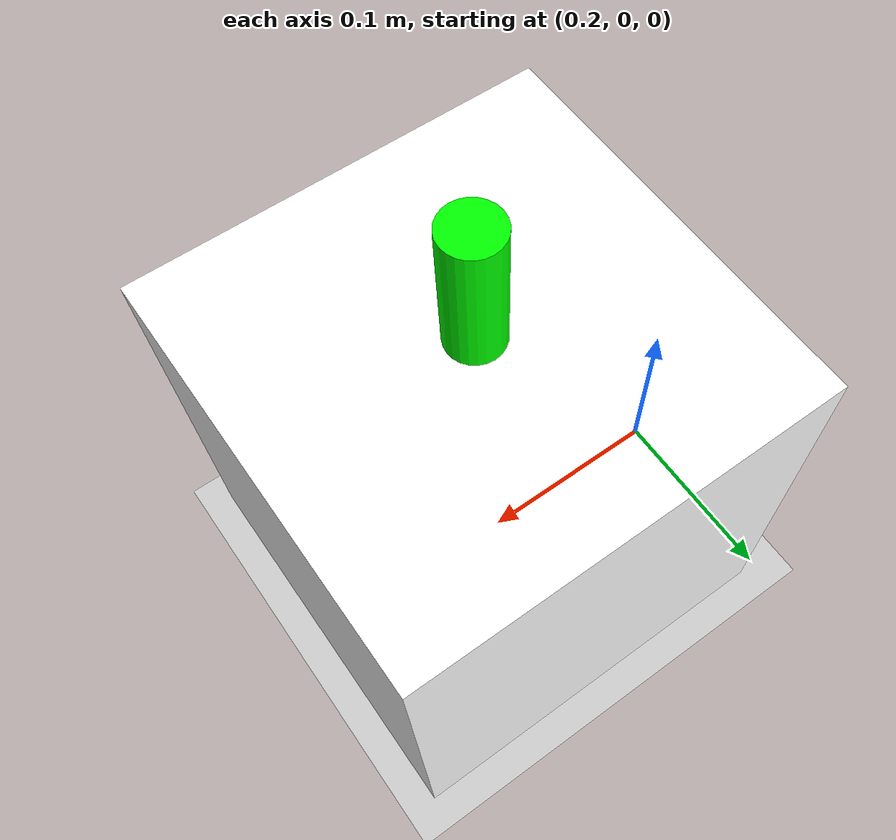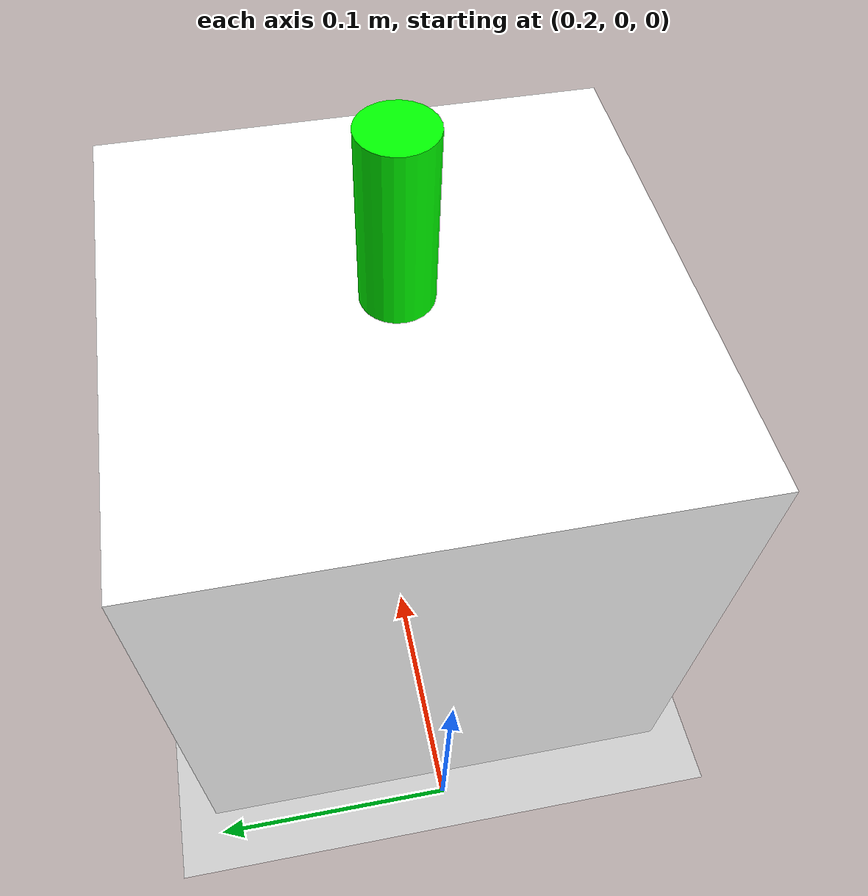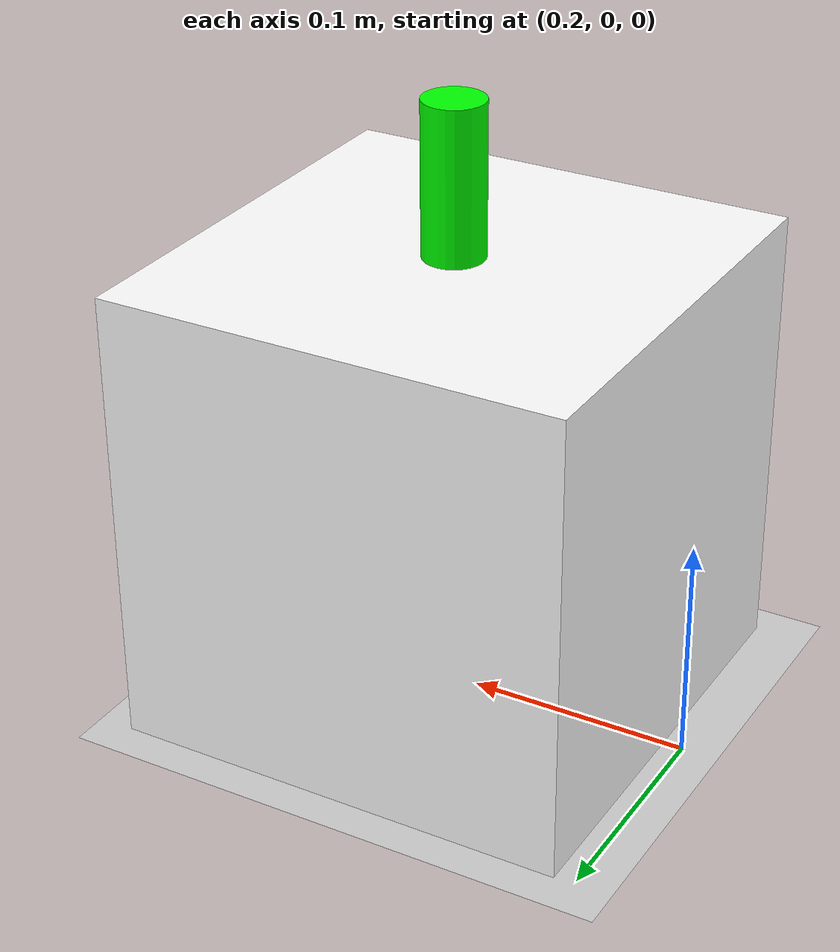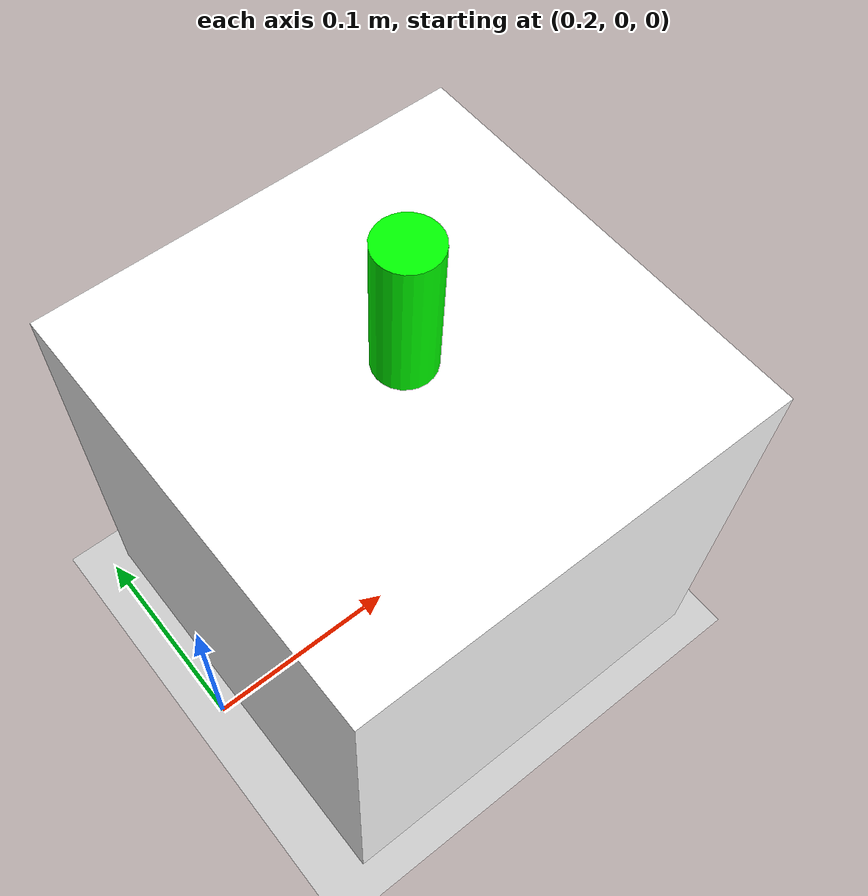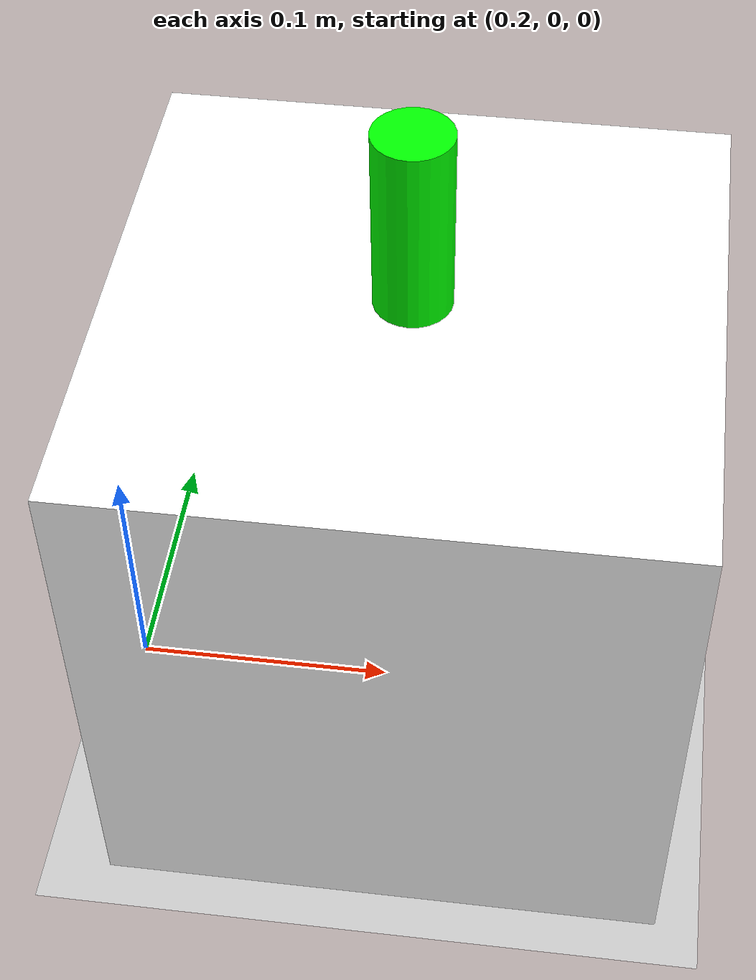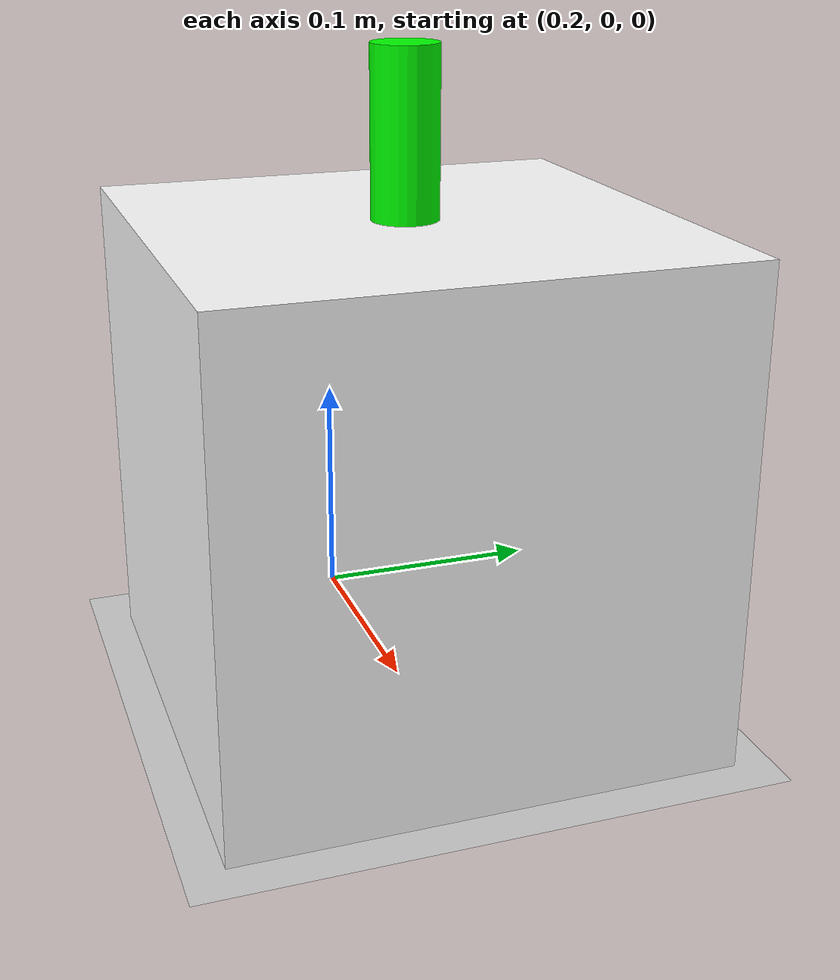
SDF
<?xml version="1.0"?>
<sdf version="1.8">
  <world name="leo_empty">
    <physics name="1ms" type="ignored">
      <max_step_size>0.001</max_step_size>
      <real_time_factor>1.0</real_time_factor>
    </physics>

    <plugin
      filename="gz-sim-physics-system"
      name="gz::sim::systems::Physics">
    </plugin>
    <plugin
      filename="gz-sim-sensors-system"
      name="gz::sim::systems::Sensors">
    </plugin>
    <plugin
      filename="gz-sim-scene-broadcaster-system"
      name="gz::sim::systems::SceneBroadcaster">
    </plugin>
    <plugin
      filename="gz-sim-user-commands-system"
      name="gz::sim::systems::UserCommands">
    </plugin>
    <plugin filename="gz-sim-imu-system"
      name="gz::sim::systems::Imu">
    </plugin>

    <light name="sun" type="directional">
      <cast_shadows>true</cast_shadows>
      <pose>0 0 10 0 0 0</pose>
      <diffuse>0.8 0.8 0.8 1</diffuse>
      <specular>0.2 0.2 0.2 1</specular>
      <attenuation>
        <range>1000</range>
        <constant>0.9</constant>
        <linear>0.01</linear>
        <quadratic>0.001</quadratic>
      </attenuation>
      <direction>-0.5 0.1 -0.9</direction>
    </light>

    <model name="ground_plane">
      <static>true</static>
      <link name="link">
        <collision name="collision">
          <geometry>
            <plane>
              <normal>0 0 1</normal>
              <size>100 100</size>
            </plane>
          </geometry>
          <surface>
            <friction>
              <ode>
                <mu>50</mu>
              </ode>
              <bullet>
                <friction>1</friction>
                <friction2>1</friction2>
                <rolling_friction>0.1</rolling_friction>
              </bullet>
            </friction>
          </surface>
        </collision>
        <visual name="visual">
          <geometry>
            <plane>
              <normal>0 0 1</normal>
              <size>100 100</size>
            </plane>
          </geometry>
          <material>
            <ambient>0.8 0.8 0.8 1</ambient>
            <diffuse>0.8 0.8 0.8 1</diffuse>
            <specular>0.8 0.8 0.8 1</specular>
          </material>
        </visual>
      </link>
    </model>

    <!-- ================= WHITE CUBE ================= -->
    <model name="cube">
      <static>true</static>
      <pose>0.311419 0 0.1025 0 0 0</pose>
      <link name="link">

        <collision name="collision">
          <geometry>
            <box>
              <size>0.205 0.205 0.205</size>
            </box>
          </geometry>
        </collision>

        <visual name="visual">
          <geometry>
            <box>
              <size>0.205 0.205 0.205</size>
            </box>
          </geometry>
          <material>
            <ambient>1 1 1 1</ambient>
            <diffuse>1 1 1 1</diffuse>
          </material>
        </visual>

      </link>
    </model>

    <!-- ================= GREEN CYLINDER ================= -->
    <model name="cylinder">
      <static>false</static>
      <pose>0.311419 0 0.2385 0 0 0</pose>
      <link name="link">

        <collision name="collision">
          <geometry>
            <cylinder>
              <radius>0.0135</radius>
              <length>0.067</length>
            </cylinder>
          </geometry>
        </collision>

        <visual name="visual">
          <geometry>
            <cylinder>
              <radius>0.0135</radius>
              <length>0.067</length>
            </cylinder>
          </geometry>
          <material>
            <ambient>0 1 0 1</ambient>
            <diffuse>0 1 0 1</diffuse>
          </material>
        </visual>

      </link>
    </model>
  </world>
</sdf>
